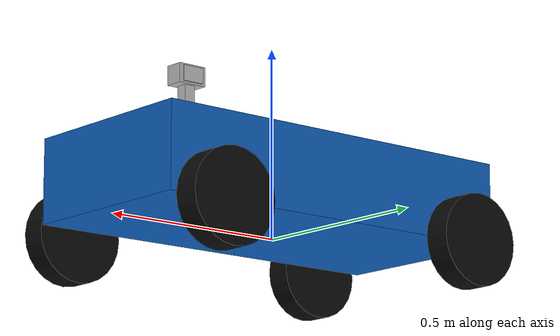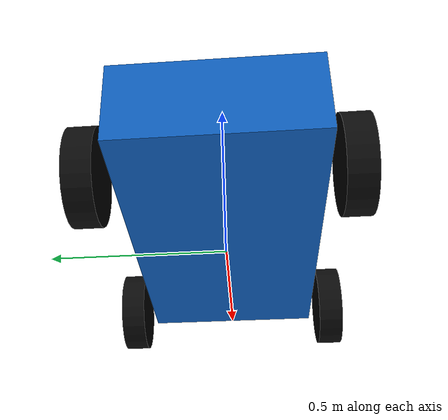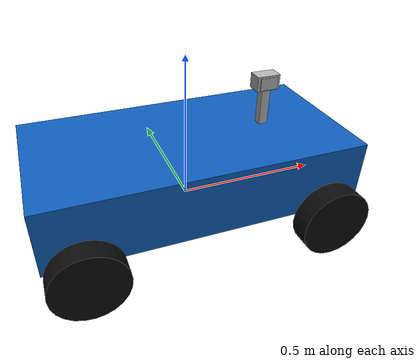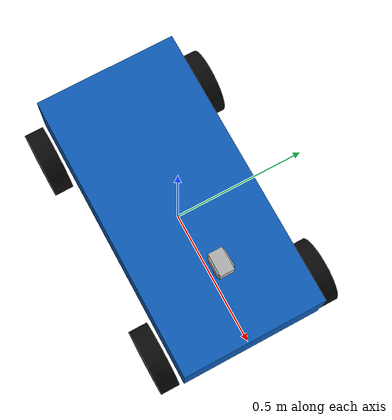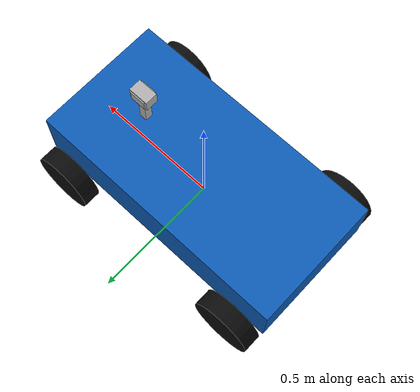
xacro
<?xml version="1.0"?>
<robot name="course_ackermann" xmlns:xacro="http://www.ros.org/wiki/xacro">
  <xacro:property name="wheel_base" value="0.8"/>
  <xacro:property name="wheel_track" value="0.62"/>
  <xacro:property name="wheel_radius" value="0.12"/>
  <xacro:property name="body_length" value="1.05"/>
  <xacro:property name="body_width" value="0.52"/>
  <xacro:property name="body_height" value="0.22"/>
  <link name="base_link">
    <visual>
      <origin xyz="0 0 0.12"/>
      <geometry><box size="${body_length} ${body_width} ${body_height}"/></geometry>
      <material name="blue"><color rgba="0.05 0.36 0.72 1"/></material>
    </visual>
    <visual>
      <origin xyz="0.28 0 0.2925"/>
      <geometry><box size="0.03 0.03 0.14"/></geometry>
      <material name="sensor_gray"><color rgba="0.7 0.7 0.7 1"/></material>
    </visual>
    <collision>
      <origin xyz="0 0 0.12"/>
      <geometry><box size="${body_length} ${body_width} ${body_height}"/></geometry>
    </collision>
    <collision>
      <origin xyz="0.28 0 0.2925"/>
      <geometry><box size="0.03 0.03 0.14"/></geometry>
    </collision>
    <inertial>
      <origin xyz="0 0 0.12"/>
      <mass value="12"/>
      <inertia ixx="0.55" ixy="0" ixz="0" iyy="1.10" iyz="0" izz="1.40"/>
    </inertial>
  </link>
  <xacro:macro name="wheel" params="axle side">
    <link name="${axle}_${side}_wheel_link">
      <visual>
        <origin rpy="1.57079632679 0 0"/>
        <geometry><cylinder radius="${wheel_radius}" length="0.07"/></geometry>
        <material name="black"><color rgba="0.04 0.04 0.04 1"/></material>
      </visual>
      <collision>
        <origin rpy="1.57079632679 0 0"/>
        <geometry><cylinder radius="${wheel_radius}" length="0.07"/></geometry>
      </collision>
      <inertial>
        <mass value="0.8"/>
        <inertia ixx="0.006" ixy="0" ixz="0" iyy="0.003" iyz="0" izz="0.006"/>
      </inertial>
    </link>
    <joint name="${axle}_${side}_wheel_fixed" type="fixed">
      <parent link="base_link"/>
      <child link="${axle}_${side}_wheel_link"/>
      <origin xyz="${wheel_base / 2 if axle == 'front' else -wheel_base / 2} ${wheel_track / 2 if side == 'left' else -wheel_track / 2} 0"/>
    </joint>
  </xacro:macro>
  <xacro:wheel axle="front" side="left"/>
  <xacro:wheel axle="front" side="right"/>
  <xacro:wheel axle="rear" side="left"/>
  <xacro:wheel axle="rear" side="right"/>
  <xacro:macro name="sensor_link" params="name size">
    <link name="${name}">
      <visual>
        <geometry><box size="${size}"/></geometry>
        <material name="sensor_gray"><color rgba="0.7 0.7 0.7 1"/></material>
      </visual>
      <collision><geometry><box size="${size}"/></geometry></collision>
      <inertial>
        <mass value="0.033333333333"/>
        <inertia ixx="0.000333333333" ixy="0" ixz="0"
                 iyy="0.000333333333" iyz="0" izz="0.000333333333"/>
      </inertial>
    </link>
  </xacro:macro>
  <xacro:sensor_link name="camera_link" size="0.08 0.05 0.05"/>
  <joint name="camera_joint" type="fixed">
    <parent link="base_link"/><child link="camera_link"/>
    <origin xyz="0.28 0 0.38"/>
  </joint>
  <xacro:sensor_link name="lidar_link" size="0.06 0.06 0.04"/>
  <joint name="lidar_joint" type="fixed">
    <parent link="base_link"/><child link="lidar_link"/>
    <origin xyz="0.28 0 0.38"/>
  </joint>
  <xacro:sensor_link name="imu_link" size="0.04 0.04 0.03"/>
  <joint name="imu_joint" type="fixed">
    <parent link="base_link"/><child link="imu_link"/>
    <origin xyz="0.28 0 0.38"/>
  </joint>
</robot>
